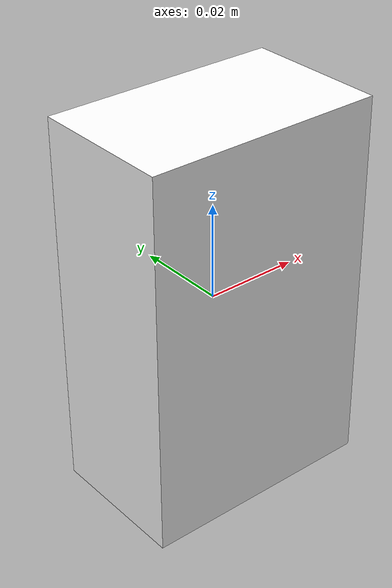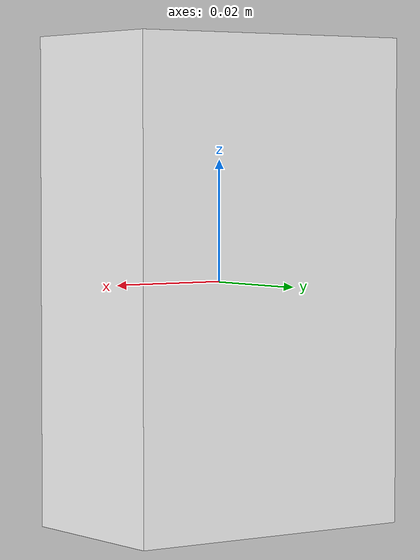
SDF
<?xml version="1.0"?>
<!-- Paquet de cafe #1 : boite 0.05 x 0.03 x 0.08, label texture (label.png).
     URI relative => GZ_SIM_RESOURCE_PATH doit contenir .../bootcamp_vision/models. -->
<sdf version="1.10">
  <model name="coffee_pack_1">
    <link name="link">
      <inertial>
        <mass>0.03</mass>
        <inertia><ixx>2.0e-5</ixx><iyy>2.5e-5</iyy><izz>1.0e-5</izz>
          <ixy>0</ixy><ixz>0</ixz><iyz>0</iyz></inertia>
      </inertial>
      <collision name="collision">
        <geometry><box><size>0.05 0.03 0.08</size></box></geometry>
      </collision>
      <visual name="visual">
        <geometry><box><size>0.05 0.03 0.08</size></box></geometry>
        <material>
          <ambient>1 1 1 1</ambient><diffuse>1 1 1 1</diffuse>
          <pbr><metal>
            <albedo_map>coffee_pack_1/materials/textures/label.png</albedo_map>
            <metalness>0.0</metalness><roughness>0.9</roughness>
          </metal></pbr>
        </material>
      </visual>
    </link>
  </model>
</sdf>
